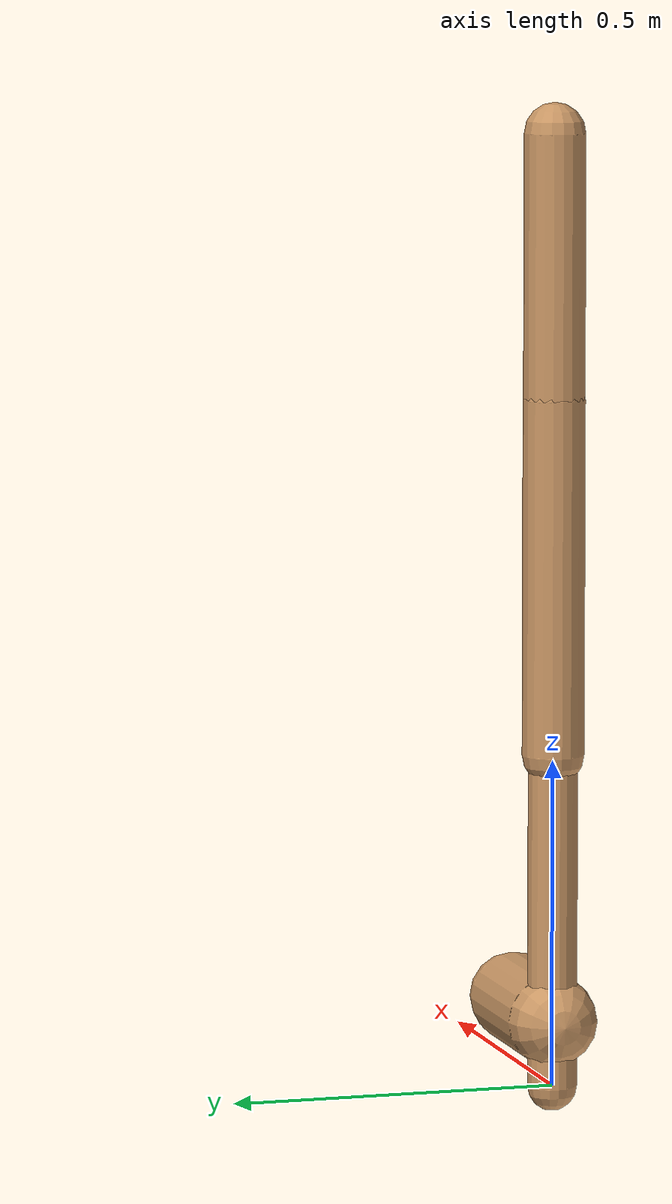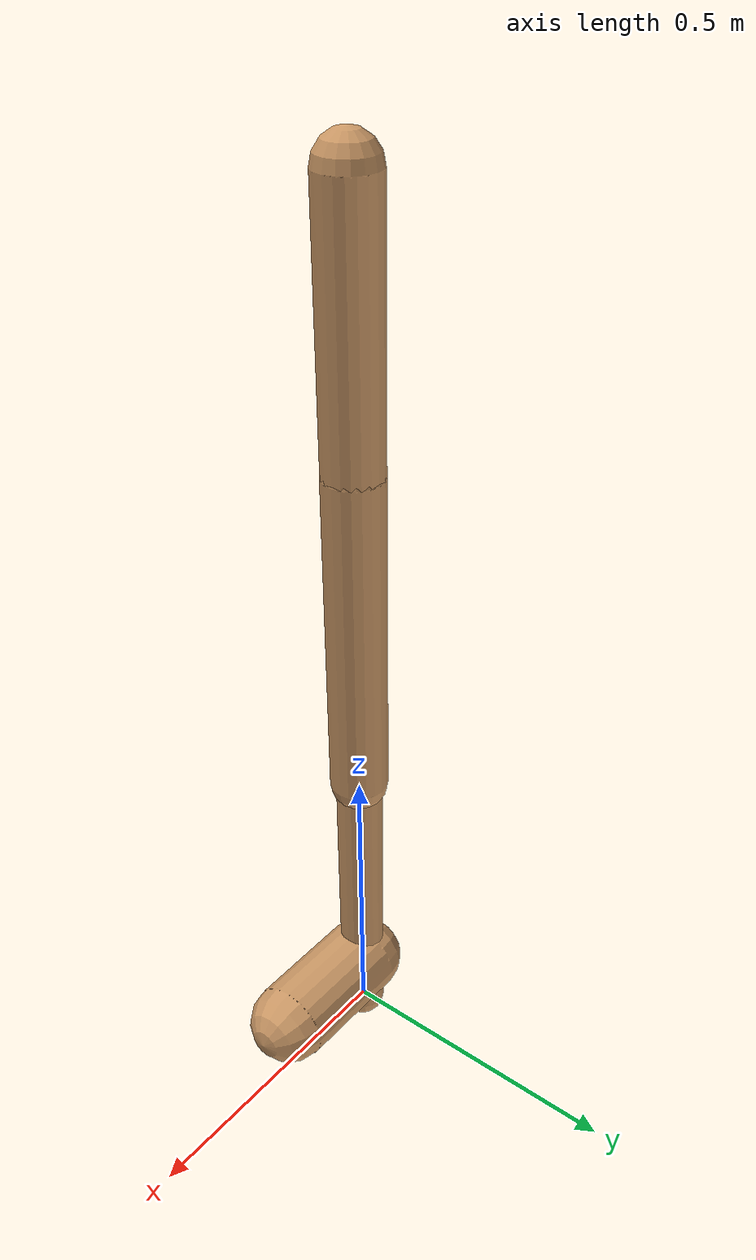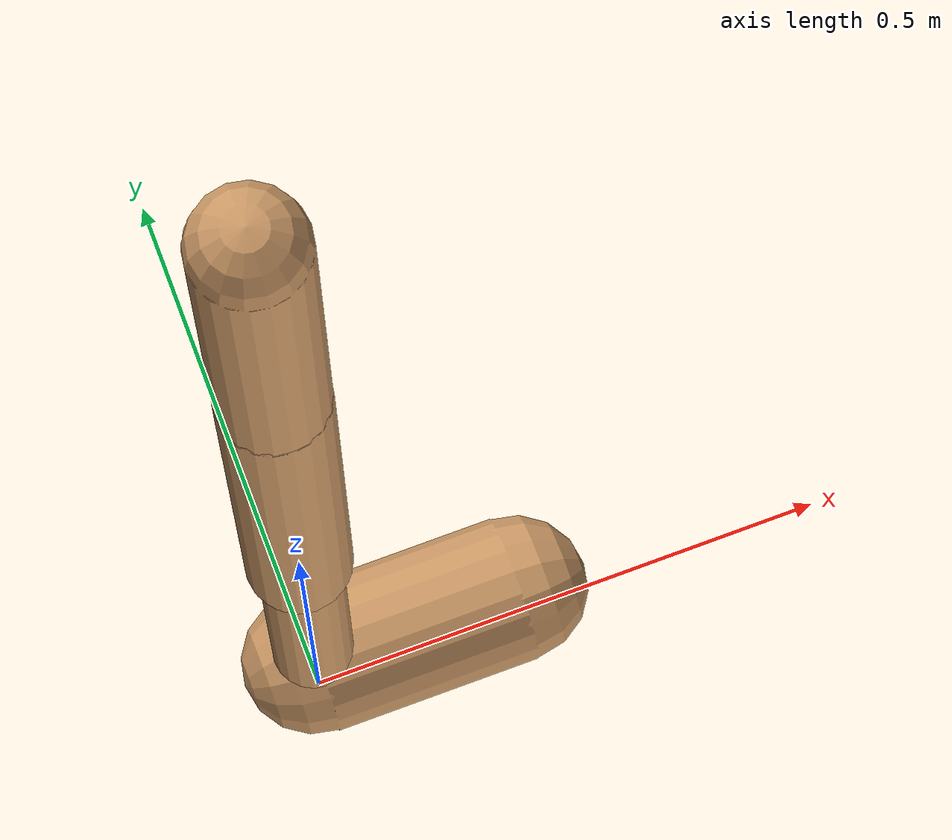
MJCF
<mujoco model="walker2d">
  <compiler angle="degree" coordinate="global" inertiafromgeom="true" />
  <default>
    <joint armature="0.01" damping=".1" limited="true" />
    <geom conaffinity="0" condim="3" contype="1" density="1000" friction="0.8 .1 .1" rgba="0.8 0.6 .4 1" />
  </default>
  <option integrator="RK4" timestep="0.002" />
  <worldbody>

    <body name="torso" pos="0 0 0.19178687481311063">
      <joint armature="0" axis="1 0 0" damping="0" limited="false" name="ignorex" pos="0 0 0" stiffness="0" type="slide" />
      <joint armature="0" axis="0 0 1" damping="0" limited="false" name="ignorez" pos="0 0 0" ref="1.25" stiffness="0" type="slide" />
      <joint armature="0" axis="0 1 0" damping="0" limited="false" name="ignorey" pos="0 0 0" stiffness="0" type="hinge" />
      <geom fromto="0 0 1.45 0 0 1.05" name="torso_geom" size="0.04651367922257815" type="capsule" />
      <body name="thigh">
        <joint axis="0 -1 0" name="thigh_joint" pos="0 0 1.05" range="-150 0" type="hinge" />
        <geom fromto="0.0 0.0 1.05 0.0 0.0 0.5091535856148423" name="thigh_geom" size="0.047111002820531545" type="capsule" />
        <body name="leg" pos="0.0 0.0 -0.09084641438515773">
          <joint axis="0 -1 0" name="leg_joint" pos="0 0 0.6" range="-150 0" type="hinge" />
          <geom fromto="0.0 0.0 0.6 0.0 0.0 -0.0009404604279529549" name="leg_geom" size="0.037688802256425236" type="capsule" />
          <body name="foot" pos="0.0 0.0 -0.10094046042795296">
            <joint axis="0 -1 0" name="foot_joint" pos="0 0 0.1" range="-45 45" type="hinge" />
            <geom fromto="0.0 0.0 0.1 0.19740191781941074 0.0 0.1" name="foot_geom" size="0.06903008532800738" type="capsule" />
          </body>
        </body>
      </body>

      <body name="thigh_left">
        <joint axis="0 -1 0" name="thigh_left_joint" pos="0 0 1.05" range="-150 0" type="hinge" />
        <geom fromto="0.0 0.0 1.05 0.0 0.0 0.5091535856148423" name="thigh_left_geom" rgba=".7 .3 .6 1" size="0.047111002820531545" type="capsule" />
        <body name="leg_left" pos="0.0 0.0 -0.09084641438515773">
          <joint axis="0 -1 0" name="leg_left_joint" pos="0 0 0.6" range="-150 0" type="hinge" />
          <geom fromto="0.0 0.0 0.6 0.0 0.0 -0.0009404604279529549" name="leg_left_geom" rgba=".7 .3 .6 1" size="0.037688802256425236" type="capsule" />
          <body name="foot_left" pos="0.0 0.0 -0.10094046042795296">
            <joint axis="0 -1 0" name="foot_left_joint" pos="0 0 0.1" range="-45 45" type="hinge" />
            <geom fromto="0.0 0.0 0.1 0.19740191781941074 0.0 0.1" name="foot_left_geom" rgba=".7 .3 .6 1" size="0.06903008532800738" type="capsule" />
          </body>
        </body>
      </body>
    </body>
  </worldbody>
  <actuator>

    <motor ctrllimited="true" ctrlrange="-1.0 1.0" gear="100" joint="thigh_joint" />
    <motor ctrllimited="true" ctrlrange="-1.0 1.0" gear="100" joint="leg_joint" />
    <motor ctrllimited="true" ctrlrange="-1.0 1.0" gear="100" joint="foot_joint" />
    <motor ctrllimited="true" ctrlrange="-1.0 1.0" gear="100" joint="thigh_left_joint" />
    <motor ctrllimited="true" ctrlrange="-1.0 1.0" gear="100" joint="leg_left_joint" />
    <motor ctrllimited="true" ctrlrange="-1.0 1.0" gear="100" joint="foot_left_joint" />

  </actuator>
</mujoco>
